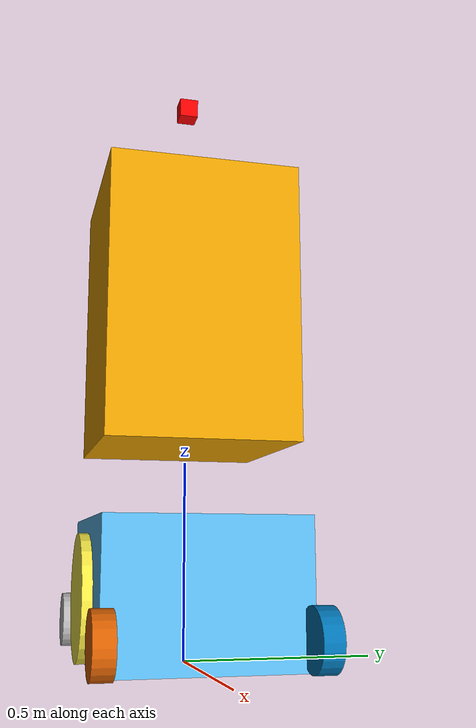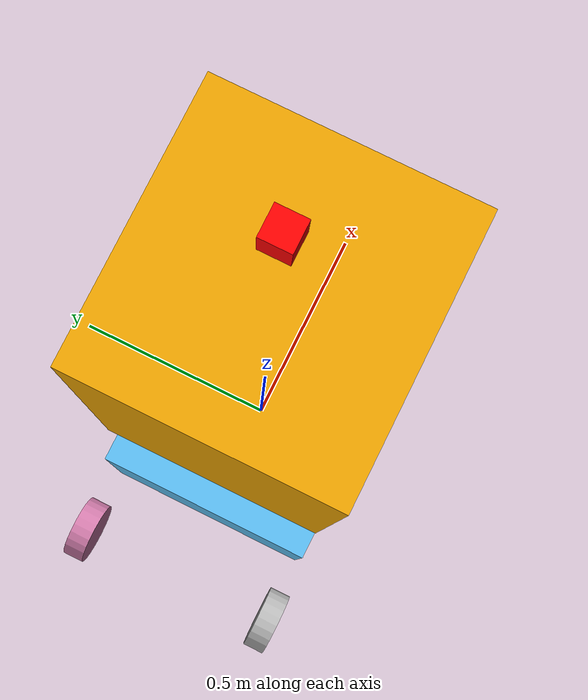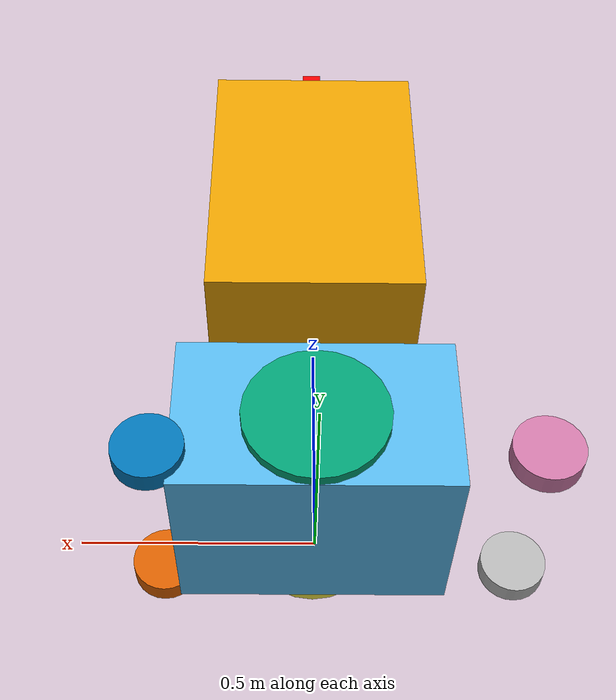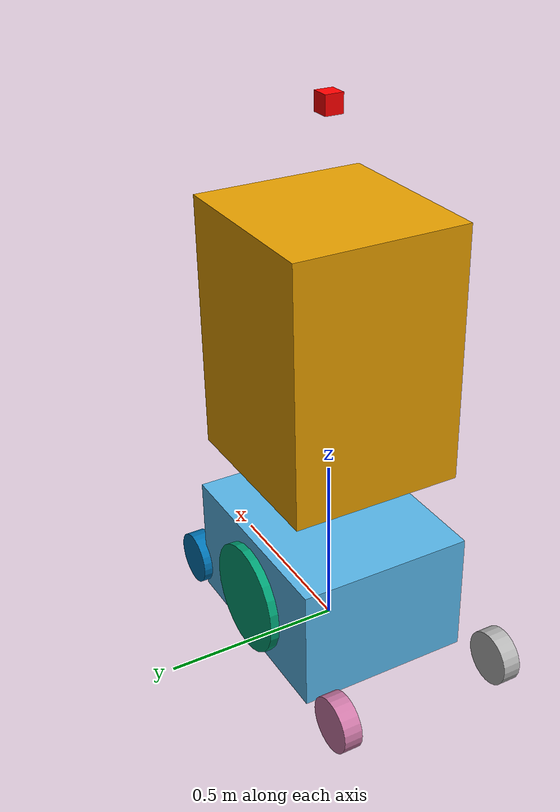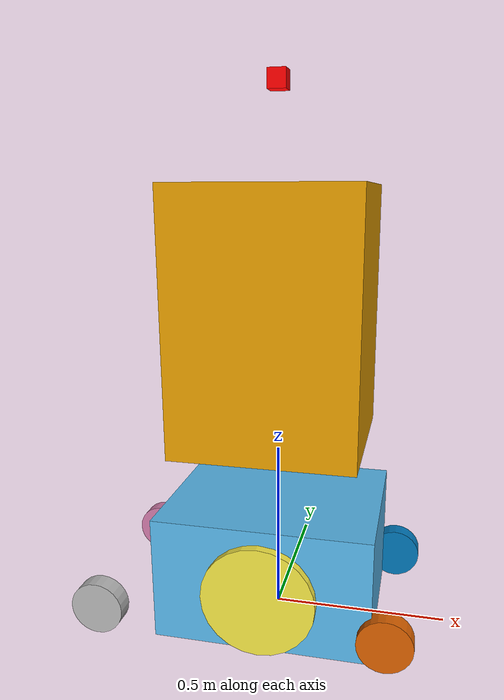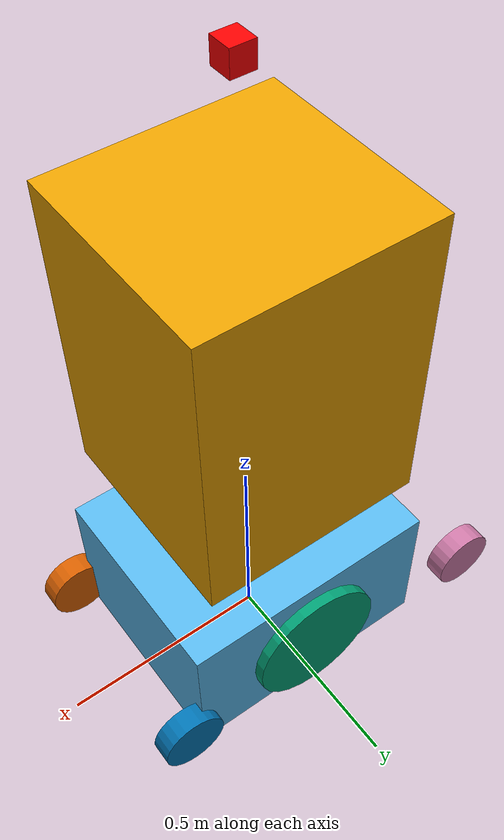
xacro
<?xml version="1.0"?>

<robot xmlns:xacro="http://www.ros.org/wiki/xacro" name="Watcher">

    <xacro:include filename="$(find robot_sim)/urdf/watcher_control.xacro"/>

    <xacro:include filename="$(find robot_sim)/urdf/depth_camera.xacro" />

    <link name="base_footprint"/>

    <joint name="base_joint" type="fixed">
        <parent link="base_footprint"/>
        <child link="base_link"/>
        <origin rpy="0 0 0" xyz="0 0 0.0"/>
    </joint>

    <!--Motor BASE-->
    <link name="base_link">
        <visual>
            <origin rpy="0 0 0" xyz="0 0 0.1778"/>
            <geometry>
                <box size="0.6096 0.4953 0.3556"/> <!--24x19.5x14 inches-->
            </geometry>
        </visual>
        <collision>
            <origin rpy="0 0 0" xyz="0 0 0.1778"/>
            <geometry>
                <box size="0.6096 0.4953 0.3556"/>
            </geometry>
        </collision>
    <!--Added inertial tags HERE-->
        <inertial>
            <mass value="30.0"/>
            <origin xyz="0 0 0.1778" rpy="0 0 0"/>
            <inertia ixx="1.0" ixy="0.0" ixz="0.0" iyy="1.0" iyz="0.0" izz="1.0"/>
        </inertial>
    </link>

    <!--DRIVE WHEELS-->
    <joint name="right_wheel_joint" type="continuous">
        <parent link="base_link"/>
        <child link="right_wheel"/>
        <axis xyz="0 1 0"/>
        <origin rpy="0 0 0" xyz="0 0.24765 0.15875"/>
    </joint>

    <link name="right_wheel">
        <visual>
            <origin rpy="1.5708 0 0" xyz="0 0 0"/>
            <geometry>
                <cylinder radius="0.15875" length="0.0508"/>
            </geometry>
        </visual>
        <collision>
            <origin rpy="1.5708 0 0" xyz="0 0 0"/>
            <geometry>
                <cylinder radius="0.15875" length="0.0508"/>
            </geometry>
            <surface>
                <contact>
                    <ode/>
                </contact>
            <friction>
                <ode>
                <mu>2.0</mu>
                <mu2>2.0</mu2>
                </ode>
            </friction>
        </surface>
        </collision>
    <!--Added interial tags HERE-->
        <inertial>
            <mass value="2.0"/>
            <origin xyz="0 0 0" rpy="0 0 0"/>
            <inertia ixx="0.01" ixy="0.0" ixz="0.0" iyy="0.01" iyz="0.0" izz="0.01"/>
        </inertial>

    </link>

    <!--Friction Right wheel-->
    <gazebo reference="right_wheel">
        <mu1>2.0</mu1>
        <mu2>2.0</mu2>
    </gazebo>

    <joint name="left_wheel_joint" type="continuous">
        <parent link="base_link"/>
        <child link="left_wheel"/>
        <axis xyz="0 1 0"/>
        <origin rpy="0 0 0" xyz="0 -0.24765 0.15875"/>
    </joint>

    <link name="left_wheel">
        <visual>
            <origin rpy="1.5708 0 0" xyz="0 0 0"/>
            <geometry>
                <cylinder radius="0.15875" length="0.0508"/>
            </geometry>
        </visual>
        <collision>
            <origin rpy="1.5708 0 0" xyz="0 0 0"/>
            <geometry>
                <cylinder radius="0.15875" length="0.0508"/>
            </geometry>

            <surface>
                <contact>
                    <ode/>
                </contact>
            <friction>
                <ode>
                <mu>2.0</mu>
                <mu2>2.0</mu2>
                </ode>
            </friction>
        </surface>
        </collision>
        <!--Added interial tags HERE-->
        <inertial>
            <mass value="2.0"/>
            <origin xyz="0 0 0" rpy="0 0 0"/>
            <inertia ixx="0.01" ixy="0.0" ixz="0.0" iyy="0.01" iyz="0.0" izz="0.01"/>
        </inertial>
    </link>
    <!--Friction For Left wheels -->
    <gazebo reference="left_wheel">
        <mu1>2.0</mu1>
        <mu2>2.0</mu2>
    </gazebo>

    <!--Front left Caster Wheel-->
    <joint name="front_left_caster_joint" type="revolute">
        <parent link="base_link"/>
        <child link="front_left_caster"/>
        <origin xyz="0.3429 0.24765 0.0762" rpy="0 0 0"/>
        <axis  xyz = "0 0 1"/>
        <limit effort = "1.0" velocity = "5.0" lower ="-3.14" upper = "3.14" />
        <dynamics damping = "0.2"/>
    </joint>

    <link name="front_left_caster">
        <visual>
            <origin xyz="0 0 0" rpy="1.5708 0 0"/>
            <geometry>
                <cylinder radius="0.0762" length="0.0508"/>
            </geometry>
        </visual>
        <collision>
            <origin xyz="0 0 0" rpy="1.5708 0 0"/>
            <geometry>
                <cylinder radius="0.0762" length="0.0508"/>
            </geometry>
        </collision>
        <inertial>
            <mass value="0.5"/>
            <origin xyz="0 0 0" rpy="0 0 0"/>
            <inertia ixx="0.001" iyy="0.001" izz="0.001" ixy="0.0" ixz="0.0" iyz="0.0"/>
        </inertial>
    </link>

    <!--Friction for Left Caster wheel-->
    <gazebo reference="front_left_caster">
        <mu1>0.01</mu1>
        <mu2>0.01</mu2>
    </gazebo>

    <!--Front Right Caster Wheel-->
    <joint name="front_right_caster_joint" type="revolute">
        <parent link="base_link"/>
        <child link="front_right_caster"/>
        <origin xyz="0.3429 -0.24765 0.0762" rpy="0 0 0"/>
        <axis xyz = "0 0 1"/>
        <limit effort = "1.0" velocity = "5.0" lower ="-3.14" upper = "3.14" />
        <dynamics damping = "0.2"/>
    </joint>

    <link name="front_right_caster">
        <visual>
            <origin xyz="0 0 0" rpy="1.5708 0 0"/>
            <geometry>
                <cylinder radius="0.0762" length="0.0508"/>
            </geometry>
        </visual>
        <collision>
            <origin xyz="0 0 0" rpy="1.5708 0 0"/>
            <geometry>
                <cylinder radius="0.0762" length="0.0508"/>
            </geometry>
        </collision>
        <inertial>
            <mass value="0.5"/>
            <origin xyz="0 0 0" rpy="0 0 0"/>
            <inertia ixx="0.001" iyy="0.001" izz="0.001" ixy="0.0" ixz="0.0" iyz="0.0"/>
        </inertial>
    </link>

    <!--Friction for front right Caster-->
    <gazebo reference="front_right_caster">
        <mu1>0.1</mu1>
        <mu2>0.1</mu2>
    </gazebo>

    <!--Rear Left  Caster Wheel-->
    <joint name="rear_left_caster_joint" type="revolute">
        <parent link="base_link"/>
        <child link="rear_left_caster"/>
        <origin xyz="-0.4699 0.24765 0.0762" rpy="0 0 0"/>
        <axis xyz = "0 0 1"/>
        <limit effort = "1.0" velocity = "5.0" lower ="-3.14" upper = "3.14" />
        <dynamics damping = "0.2"/>
    </joint>

    <link name="rear_left_caster">
        <visual>
            <origin xyz="0 0 0" rpy="1.5708 0 0"/>
            <geometry>
                <cylinder radius="0.0762" length="0.0508"/>
            </geometry>
        </visual>
        <collision>
            <origin xyz="0 0 0" rpy="1.5708 0 0"/>
            <geometry>
                <cylinder radius="0.0762" length="0.0508"/>
            </geometry>
        </collision>
        <inertial>
            <mass value="0.5"/>
            <origin xyz="0 0 0" rpy="0 0 0"/>
            <inertia ixx="0.001" iyy="0.001" izz="0.001" ixy="0.0" ixz="0.0" iyz="0.0"/>
        </inertial>
    </link>

    <!--Friction for Rear Left Caster-->
    <gazebo reference="rear_left_caster">
        <mu1>0.1</mu1>
        <mu2>0.1</mu2>
    </gazebo>

    <!--Reat right caster-->
    <joint name="rear_right_caster_joint" type="revolute">
        <parent link="base_link"/>
        <child link="rear_right_caster"/>
        <origin xyz="-0.4699 -0.24765 0.0762" rpy="0 0 0"/>
        <axis xyz = "0 0 1"/>
        <limit effort = "1.0" velocity = "5.0" lower ="-3.14" upper = "3.14" />
        <dynamics damping = "0.2"/>
    </joint>

    <link name="rear_right_caster">
        <visual>
            <origin xyz="0 0 0" rpy="1.5708 0 0"/>
            <geometry>
                <cylinder radius="0.0762" length="0.0508"/>
            </geometry>
        </visual>
        <collision>
            <origin xyz="0 0 0" rpy="1.5708 0 0"/>
            <geometry>
                <cylinder radius="0.0762" length="0.0508"/>
            </geometry>
        </collision>
        <inertial>
            <mass value="0.5"/>
            <origin xyz="0 0 0" rpy="0 0 0"/>
            <inertia ixx="0.001" iyy="0.001" izz="0.001" ixy="0.0" ixz="0.0" iyz="0.0"/>
        </inertial>
    </link>
    <!--Friction for rear Right Caster-->
    <gazebo reference="rear_right_caster">
        <mu1>0.1</mu1>
        <mu2>0.1</mu2>
    </gazebo>

    <!--Chair-->
    <joint name="chair_joint" type="fixed">
        <parent link="base_link"/>
        <child link="chair"/>
        <origin rpy="0 0 0" xyz="0 0 0.5334"/>
    </joint>

    <link name="chair">
        <visual>
            <origin rpy="0 0 0" xyz="0 0 0.3556"/>
            <geometry>
                <box size="0.508 0.4826 0.7112"/>
            </geometry>
        </visual>
        <collision>
            <origin rpy="0 0 0" xyz="0 0 0.3556"/>
            <geometry>
                <box size="0.508 0.4826 0.7112"/>
            </geometry>
        </collision>

        <!--Added interial tags HERE-->
        <inertial>
            <mass value="10.0"/>
            <origin xyz="0 0 0.3556" rpy="0 0 0"/>
            <inertia ixx="0.5" ixy="0.0" ixz="0.0" iyy="0.5" iyz="0.0" izz="0.5"/>
        </inertial>
    </link>

    <!--Differential Drive-->
    <gazebo>
        <plugin name="diff_drive_controller" filename="libgazebo_ros_diff_drive.so">
            <ros>
                <namespace>/</namespace>
                <remapping>cmd_vel:=/cmd_vel</remapping>
                <remapping>odom:=/odom</remapping>
            </ros>

            <!-- Wheel configuration -->
            <left_joint>left_wheel_joint</left_joint>
            <right_joint>right_wheel_joint</right_joint>

            <!-- Physical params -->
            <wheel_separation>0.4953</wheel_separation>  <!-- distance between wheels -->
            <wheel_radius>0.15875</wheel_radius>          <!-- radius of wheel -->
            <wheel_diameter>0.3175</wheel_diameter>         <!--Wheel diameter-->

            <!-- Odometry settings -->
            <publish_odom>true</publish_odom>
            <publish_odom_tf>true</publish_odom_tf>
            <odometry_frame>odom</odometry_frame>
            <robot_base_frame>base_link</robot_base_frame>

            <!-- Control tuning -->
            <update_rate>50</update_rate>
            <cmd_vel_topic>/cmd_vel</cmd_vel_topic>
            <max_wheel_torque>200.0</max_wheel_torque>
        </plugin>

        <plugin filename="gz_ros2_control-system" name="gz_ros2_control::GazeboSimROS2ControlPlugin">
            <parameters>$(find watcher_controller)/config/watcher_controllers.yaml</parameters>
        </plugin>
    </gazebo>

    <xacro:depth_camera parent="chair"/>
</robot>

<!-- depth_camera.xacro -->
<robot xmlns:xacro="http://www.ros.org/wiki/xacro">

  <xacro:macro name="depth_camera" params="parent">

    <!-- Camera Joint -->
    <joint name="depth_camera_joint" type="fixed">
      <parent link="base_footprint"/>
      <child link="depth_camera_link"/>
      <origin xyz="0 0 1.5" rpy="0 0 0"/>
    </joint>

    <!-- Camera Link -->
    <link name="depth_camera_link">
      <visual>
        <origin xyz="0 0 0" rpy="0 0 0"/>
        <geometry>
          <box size="0.05 0.05 0.05"/>
        </geometry>
        <material name = "red">
          <color rgba="1.0 0.0 0.0 1.0"/>
        </material>
      </visual>
      <collision>
        <origin xyz="0 0 0" rpy="0 0 0"/>
        <geometry>
          <box size="0.1245 0.0265 0.0305"/>
        </geometry>
      </collision>
      <inertial>
        <mass value="0.01"/>
        <origin xyz="0 0 0" rpy="0 0 0"/>
        <inertia ixx="0.00001" iyy="0.00001" izz="0.00001" ixy="0.0" ixz="0.0" iyz="0.0"/>
      </inertial>
    </link>

    <!--Sensor placed correctly inside link -->
    <gazebo reference="depth_camera_link">
      <sensor name="depth_camera" type="depth">
        <pose>0 0 0 0 0 0</pose>
        <always_on>true</always_on>
        <update_rate>30</update_rate>
        <visualize>true</visualize>
        <camera>
          <horizontal_fov>1.047</horizontal_fov>
          <image>
            <width>640</width>
            <height>480</height>
            <format>R8G8B8</format>
          </image>
          <clip>
            <near>0.1</near>
            <far>10.0</far>
          </clip>
        </camera>
        <plugin name="depth_camera_controller" filename="libgazebo_ros_camera.so">
          <ros>
            <namespace>/depth_camera</namespace>
          </ros>
          <image_topic_name>image_raw</image_topic_name>
          <depth_image_topic_name>depth/image_raw</depth_image_topic_name>
          <camera_info_topic_name>camera_info</camera_info_topic_name>
          <frame_name>depth_camera_link</frame_name>
        </plugin>
      </sensor>
    </gazebo>

  </xacro:macro>
</robot>
